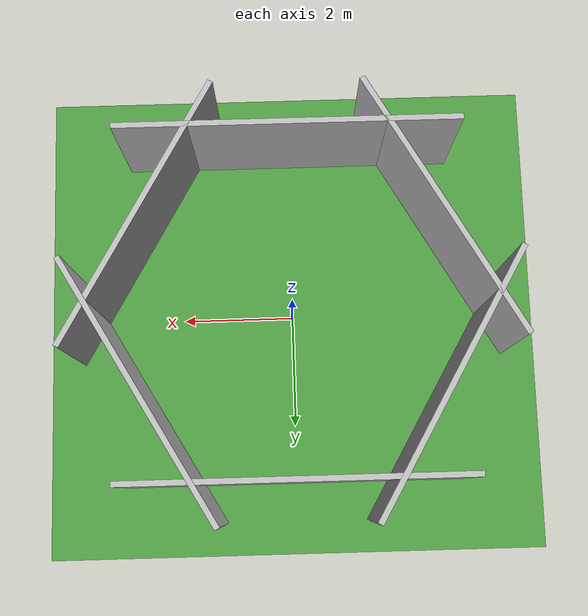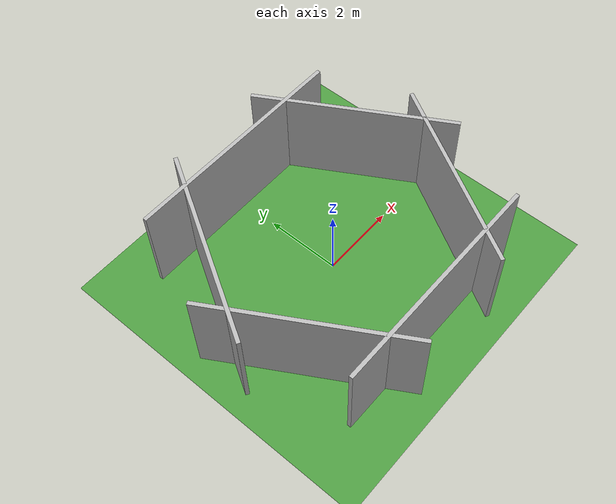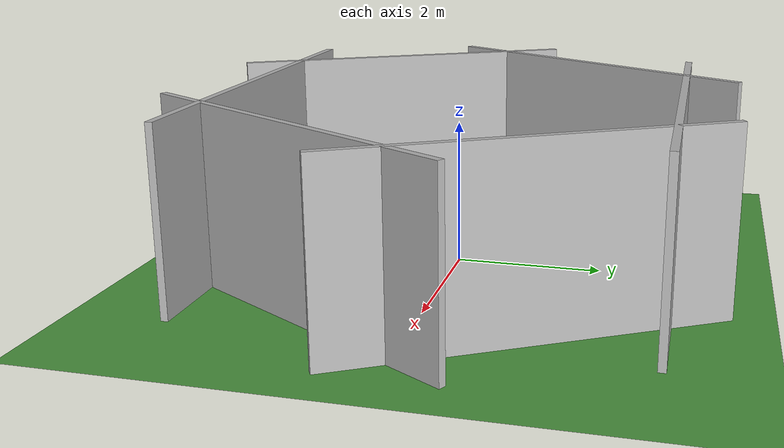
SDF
<?xml version="1.0" ?>
<sdf version="1.6">
  <world name="hexagon_room">
    <!-- Sunlight -->
    <include>
      <uri>model://sun</uri>
    </include>

    <!-- Ground Plane -->
    <!-- Not needed since we will define a custom floor -->

    <!-- Hexagon-Shaped Room Structure -->
    <model name="hexagon_room_structure">
      <static>true</static>

      <!-- Floor -->
      <link name="floor">
        <collision name="floor_collision">
          <geometry>
            <plane>
              <normal>0 0 1</normal>
              <size>10 10</size>
            </plane>
          </geometry>
        </collision>
        <visual name="floor_visual">
          <geometry>
            <plane>
              <normal>0 0 1</normal>
              <size>10 10</size>
            </plane>
          </geometry>
          <material>
            <script>
              <uri>file://media/materials/scripts/gazebo.material</uri>
              <name>Gazebo/Grass</name>
            </script>
          </material>
        </visual>
      </link>

      <!-- Walls -->
      <!-- Each wall is a link, positioned and rotated to form a hexagon -->

      <!-- Wall 1 -->
      <link name="wall_1">
        <pose>2.5981 1.5 1.25 0 0 -1.0472</pose> <!-- -60 degrees in radians -->
        <collision name="collision">
          <geometry>
            <box>
              <size>5.196 0.1 2.5</size>
            </box>
          </geometry>
        </collision>
        <visual name="visual">
          <geometry>
            <box>
              <size>5.196 0.1 2.5</size>
            </box>
          </geometry>
        </visual>
      </link>

      <!-- Wall 2 -->
      <link name="wall_2">
        <pose>2.5981 -1.5 1.25 0 0 -2.0944</pose> <!-- -120 degrees -->
        <collision name="collision">
          <geometry>
            <box>
              <size>5.196 0.1 2.5</size>
            </box>
          </geometry>
        </collision>
        <visual name="visual">
          <geometry>
            <box>
              <size>5.196 0.1 2.5</size>
            </box>
          </geometry>
        </visual>
      </link>

      <!-- Wall 3 -->
      <link name="wall_3">
        <pose>0 -3 1.25 0 0 3.1416</pose> <!-- 180 degrees -->
        <collision name="collision">
          <geometry>
            <box>
              <size>6 0.1 2.5</size>
            </box>
          </geometry>
        </collision>
        <visual name="visual">
          <geometry>
            <box>
              <size>6 0.1 2.5</size>
            </box>
          </geometry>
        </visual>
      </link>

      <!-- Wall 4 -->
      <link name="wall_4">
        <pose>-2.5981 -1.5 1.25 0 0 2.0944</pose> <!-- 120 degrees -->
        <collision name="collision">
          <geometry>
            <box>
              <size>5.196 0.1 2.5</size>
            </box>
          </geometry>
        </collision>
        <visual name="visual">
          <geometry>
            <box>
              <size>5.196 0.1 2.5</size>
            </box>
          </geometry>
        </visual>
      </link>

      <!-- Wall 5 -->
      <link name="wall_5">
        <pose>-2.5981 1.5 1.25 0 0 1.0472</pose> <!-- 60 degrees -->
        <collision name="collision">
          <geometry>
            <box>
              <size>5.196 0.1 2.5</size>
            </box>
          </geometry>
        </collision>
        <visual name="visual">
          <geometry>
            <box>
              <size>5.196 0.1 2.5</size>
            </box>
          </geometry>
        </visual>
      </link>

      <!-- Wall 6 -->
      <link name="wall_6">
        <pose>0 3 1.25 0 0 0</pose> <!-- 0 degrees -->
        <collision name="collision">
          <geometry>
            <box>
              <size>6 0.1 2.5</size>
            </box>
          </geometry>
        </collision>
        <visual name="visual">
          <geometry>
            <box>
              <size>6 0.1 2.5</size>
            </box>
          </geometry>
        </visual>
      </link>
    </model>

    <!-- Objects Inside the Hexagon Room -->
    <!-- Adding some objects for complexity -->

  </world>
</sdf>
